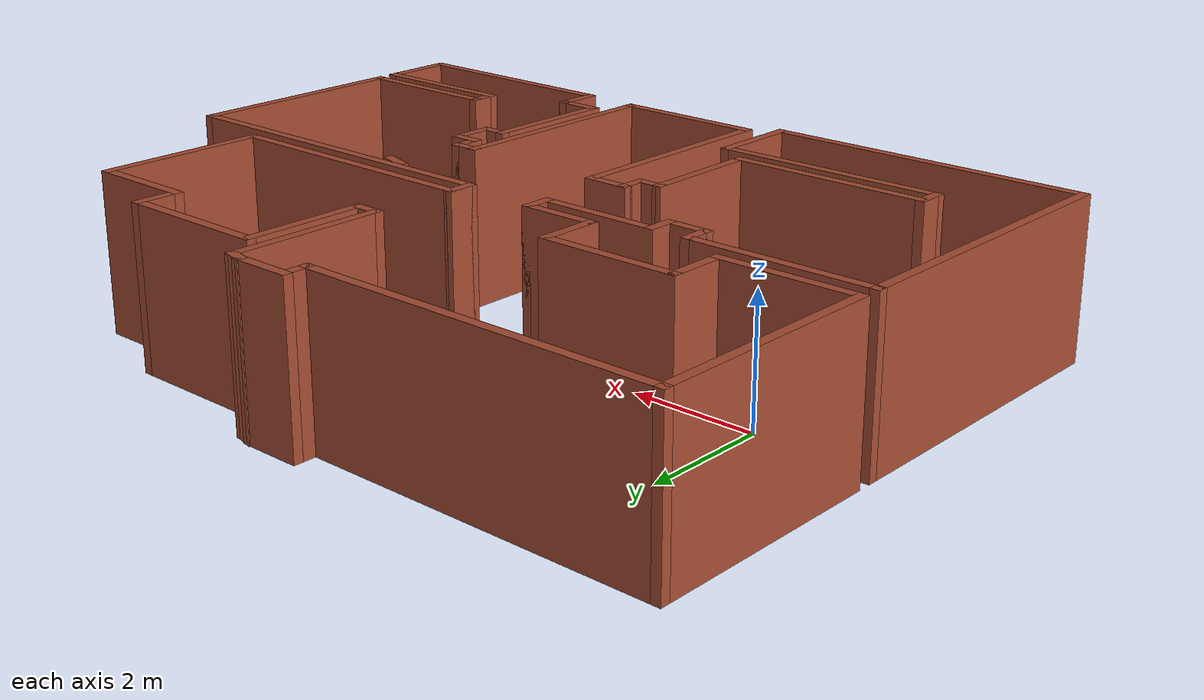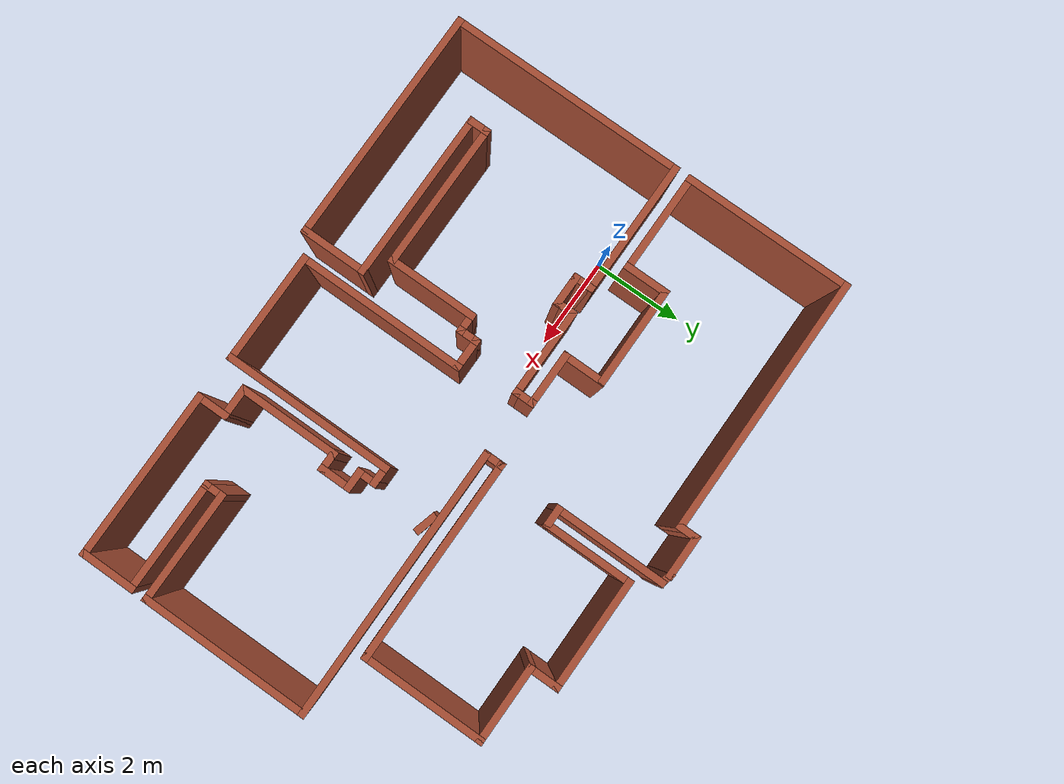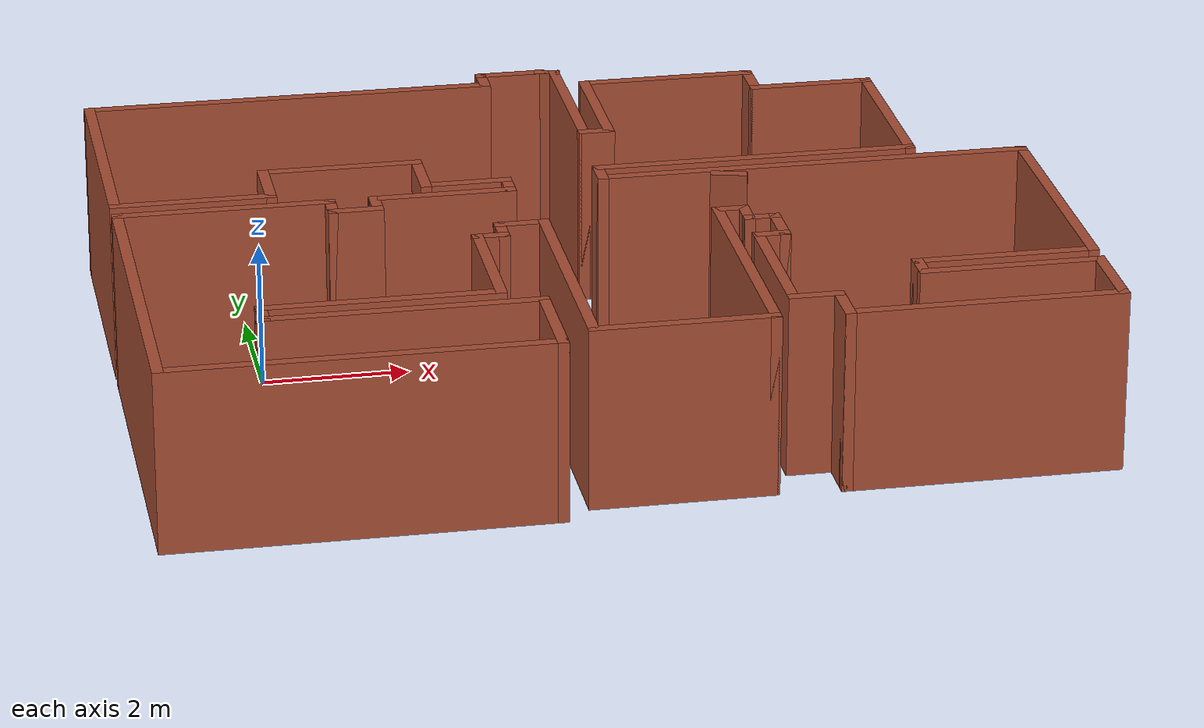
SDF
<?xml version='1.0'?>
<sdf version='1.6'>
  <model name='map_66'>
    <pose frame=''>4.36563 -0.210563 0 0 -0 0</pose>
    <link name='Wall_0'>
      <collision name='Wall_0_Collision'>
        <geometry>
          <box>
            <size>1 0.15 2.5</size>
          </box>
        </geometry>
        <pose frame=''>0 0 1.25 0 -0 0</pose>
      </collision>
      <visual name='Wall_0_Visual'>
        <pose frame=''>0 0 1.25 0 -0 0</pose>
        <geometry>
          <box>
            <size>1 0.15 2.5</size>
          </box>
        </geometry>
        <material>
          <script>
            <uri>file://media/materials/scripts/gazebo.material</uri>
            <name>Gazebo/Bricks</name>
          </script>
          <ambient>1 1 1 1</ambient>
        </material>
        <meta>
          <layer>0</layer>
        </meta>
      </visual>
      <pose frame=''>-0.2 4.69203 0 0 -0 3.14159</pose>
    </link>
    <link name='Wall_1'>
      <collision name='Wall_1_Collision'>
        <geometry>
          <box>
            <size>0.5 0.15 2.5</size>
          </box>
        </geometry>
        <pose frame=''>0 0 1.25 0 -0 0</pose>
      </collision>
      <visual name='Wall_1_Visual'>
        <pose frame=''>0 0 1.25 0 -0 0</pose>
        <geometry>
          <box>
            <size>0.5 0.15 2.5</size>
          </box>
        </geometry>
        <material>
          <script>
            <uri>file://media/materials/scripts/gazebo.material</uri>
            <name>Gazebo/Bricks</name>
          </script>
          <ambient>1 1 1 1</ambient>
        </material>
        <meta>
          <layer>0</layer>
        </meta>
      </visual>
      <pose frame=''>-0.625 4.51703 0 0 -0 -1.5708</pose>
    </link>
    <link name='Wall_12'>
      <collision name='Wall_12_Collision'>
        <geometry>
          <box>
            <size>2 0.15 2.5</size>
          </box>
        </geometry>
        <pose frame=''>0 0 1.25 0 -0 0</pose>
      </collision>
      <visual name='Wall_12_Visual'>
        <pose frame=''>0 0 1.25 0 -0 0</pose>
        <geometry>
          <box>
            <size>2 0.15 2.5</size>
          </box>
        </geometry>
        <material>
          <script>
            <uri>file://media/materials/scripts/gazebo.material</uri>
            <name>Gazebo/Bricks</name>
          </script>
          <ambient>1 1 1 1</ambient>
        </material>
        <meta>
          <layer>0</layer>
        </meta>
      </visual>
      <pose frame=''>-1.85 0.392025 0 0 -0 3.14159</pose>
    </link>
    <link name='Wall_13'>
      <collision name='Wall_13_Collision'>
        <geometry>
          <box>
            <size>0.5 0.15 2.5</size>
          </box>
        </geometry>
        <pose frame=''>0 0 1.25 0 -0 0</pose>
      </collision>
      <visual name='Wall_13_Visual'>
        <pose frame=''>0 0 1.25 0 -0 0</pose>
        <geometry>
          <box>
            <size>0.5 0.15 2.5</size>
          </box>
        </geometry>
        <material>
          <script>
            <uri>file://media/materials/scripts/gazebo.material</uri>
            <name>Gazebo/Bricks</name>
          </script>
          <ambient>1 1 1 1</ambient>
        </material>
        <meta>
          <layer>0</layer>
        </meta>
      </visual>
      <pose frame=''>-2.775 0.217025 0 0 -0 -1.5708</pose>
    </link>
    <link name='Wall_14'>
      <collision name='Wall_14_Collision'>
        <geometry>
          <box>
            <size>0.75 0.15 2.5</size>
          </box>
        </geometry>
        <pose frame=''>0 0 1.25 0 -0 0</pose>
      </collision>
      <visual name='Wall_14_Visual'>
        <pose frame=''>0 0 1.25 0 -0 0</pose>
        <geometry>
          <box>
            <size>0.75 0.15 2.5</size>
          </box>
        </geometry>
        <material>
          <script>
            <uri>file://media/materials/scripts/gazebo.material</uri>
            <name>Gazebo/Bricks</name>
          </script>
          <ambient>1 1 1 1</ambient>
        </material>
        <meta>
          <layer>0</layer>
        </meta>
      </visual>
      <pose frame=''>-3.075 0.042025 0 0 -0 3.14159</pose>
    </link>
    <link name='Wall_15'>
      <collision name='Wall_15_Collision'>
        <geometry>
          <box>
            <size>0.5 0.15 2.5</size>
          </box>
        </geometry>
        <pose frame=''>0 0 1.25 0 -0 0</pose>
      </collision>
      <visual name='Wall_15_Visual'>
        <pose frame=''>0 0 1.25 0 -0 0</pose>
        <geometry>
          <box>
            <size>0.5 0.15 2.5</size>
          </box>
        </geometry>
        <material>
          <script>
            <uri>file://media/materials/scripts/gazebo.material</uri>
            <name>Gazebo/Bricks</name>
          </script>
          <ambient>1 1 1 1</ambient>
        </material>
        <meta>
          <layer>0</layer>
        </meta>
      </visual>
      <pose frame=''>-3.375 0.217025 0 0 -0 1.5708</pose>
    </link>
    <link name='Wall_16'>
      <collision name='Wall_16_Collision'>
        <geometry>
          <box>
            <size>3 0.15 2.5</size>
          </box>
        </geometry>
        <pose frame=''>0 0 1.25 0 -0 0</pose>
      </collision>
      <visual name='Wall_16_Visual'>
        <pose frame=''>0 0 1.25 0 -0 0</pose>
        <geometry>
          <box>
            <size>3 0.15 2.5</size>
          </box>
        </geometry>
        <material>
          <script>
            <uri>file://media/materials/scripts/gazebo.material</uri>
            <name>Gazebo/Bricks</name>
          </script>
          <ambient>1 1 1 1</ambient>
        </material>
        <meta>
          <layer>0</layer>
        </meta>
      </visual>
      <pose frame=''>-4.8 0.392025 0 0 -0 3.14159</pose>
    </link>
    <link name='Wall_17'>
      <collision name='Wall_17_Collision'>
        <geometry>
          <box>
            <size>5.25 0.15 2.5</size>
          </box>
        </geometry>
        <pose frame=''>0 0 1.25 0 -0 0</pose>
      </collision>
      <visual name='Wall_17_Visual'>
        <pose frame=''>0 0 1.25 0 -0 0</pose>
        <geometry>
          <box>
            <size>5.25 0.15 2.5</size>
          </box>
        </geometry>
        <material>
          <script>
            <uri>file://media/materials/scripts/gazebo.material</uri>
            <name>Gazebo/Bricks</name>
          </script>
          <ambient>1 1 1 1</ambient>
        </material>
        <meta>
          <layer>0</layer>
        </meta>
      </visual>
      <pose frame=''>-6.225 -2.15797 0 0 -0 -1.5708</pose>
    </link>
    <link name='Wall_18'>
      <collision name='Wall_18_Collision'>
        <geometry>
          <box>
            <size>5.25 0.15 2.5</size>
          </box>
        </geometry>
        <pose frame=''>0 0 1.25 0 -0 0</pose>
      </collision>
      <visual name='Wall_18_Visual'>
        <pose frame=''>0 0 1.25 0 -0 0</pose>
        <geometry>
          <box>
            <size>5.25 0.15 2.5</size>
          </box>
        </geometry>
        <material>
          <script>
            <uri>file://media/materials/scripts/gazebo.material</uri>
            <name>Gazebo/Bricks</name>
          </script>
          <ambient>1 1 1 1</ambient>
        </material>
        <meta>
          <layer>0</layer>
        </meta>
      </visual>
      <pose frame=''>-3.675 -4.70798 0 0 -0 0</pose>
    </link>
    <link name='Wall_19'>
      <collision name='Wall_19_Collision'>
        <geometry>
          <box>
            <size>1.5 0.15 2.5</size>
          </box>
        </geometry>
        <pose frame=''>0 0 1.25 0 -0 0</pose>
      </collision>
      <visual name='Wall_19_Visual'>
        <pose frame=''>0 0 1.25 0 -0 0</pose>
        <geometry>
          <box>
            <size>1.5 0.15 2.5</size>
          </box>
        </geometry>
        <material>
          <script>
            <uri>file://media/materials/scripts/gazebo.material</uri>
            <name>Gazebo/Bricks</name>
          </script>
          <ambient>1 1 1 1</ambient>
        </material>
        <meta>
          <layer>0</layer>
        </meta>
      </visual>
      <pose frame=''>-1.125 -4.03298 0 0 -0 1.5708</pose>
    </link>
    <link name='Wall_2'>
      <collision name='Wall_2_Collision'>
        <geometry>
          <box>
            <size>5.75 0.15 2.5</size>
          </box>
        </geometry>
        <pose frame=''>0 0 1.25 0 -0 0</pose>
      </collision>
      <visual name='Wall_2_Visual'>
        <pose frame=''>0 0 1.25 0 -0 0</pose>
        <geometry>
          <box>
            <size>5.75 0.15 2.5</size>
          </box>
        </geometry>
        <material>
          <script>
            <uri>file://media/materials/scripts/gazebo.material</uri>
            <name>Gazebo/Bricks</name>
          </script>
          <ambient>1 1 1 1</ambient>
        </material>
        <meta>
          <layer>0</layer>
        </meta>
      </visual>
      <pose frame=''>-3.425 4.34202 0 0 -0 3.14159</pose>
    </link>
    <link name='Wall_20'>
      <collision name='Wall_20_Collision'>
        <geometry>
          <box>
            <size>3.75 0.15 2.5</size>
          </box>
        </geometry>
        <pose frame=''>0 0 1.25 0 -0 0</pose>
      </collision>
      <visual name='Wall_20_Visual'>
        <pose frame=''>0 0 1.25 0 -0 0</pose>
        <geometry>
          <box>
            <size>3.75 0.15 2.5</size>
          </box>
        </geometry>
        <material>
          <script>
            <uri>file://media/materials/scripts/gazebo.material</uri>
            <name>Gazebo/Bricks</name>
          </script>
          <ambient>1 1 1 1</ambient>
        </material>
        <meta>
          <layer>0</layer>
        </meta>
      </visual>
      <pose frame=''>-2.925 -3.35798 0 0 -0 3.14159</pose>
    </link>
    <link name='Wall_21'>
      <collision name='Wall_21_Collision'>
        <geometry>
          <box>
            <size>0.5 0.15 2.5</size>
          </box>
        </geometry>
        <pose frame=''>0 0 1.25 0 -0 0</pose>
      </collision>
      <visual name='Wall_21_Visual'>
        <pose frame=''>0 0 1.25 0 -0 0</pose>
        <geometry>
          <box>
            <size>0.5 0.15 2.5</size>
          </box>
        </geometry>
        <material>
          <script>
            <uri>file://media/materials/scripts/gazebo.material</uri>
            <name>Gazebo/Bricks</name>
          </script>
          <ambient>1 1 1 1</ambient>
        </material>
        <meta>
          <layer>0</layer>
        </meta>
      </visual>
      <pose frame=''>-4.725 -3.18297 0 0 -0 1.5708</pose>
    </link>
    <link name='Wall_22'>
      <collision name='Wall_22_Collision'>
        <geometry>
          <box>
            <size>3.25 0.15 2.5</size>
          </box>
        </geometry>
        <pose frame=''>0 0 1.25 0 -0 0</pose>
      </collision>
      <visual name='Wall_22_Visual'>
        <pose frame=''>0 0 1.25 0 -0 0</pose>
        <geometry>
          <box>
            <size>3.25 0.15 2.5</size>
          </box>
        </geometry>
        <material>
          <script>
            <uri>file://media/materials/scripts/gazebo.material</uri>
            <name>Gazebo/Bricks</name>
          </script>
          <ambient>1 1 1 1</ambient>
        </material>
        <meta>
          <layer>0</layer>
        </meta>
      </visual>
      <pose frame=''>-3.175 -3.00798 0 0 -0 0</pose>
    </link>
    <link name='Wall_28'>
      <collision name='Wall_28_Collision'>
        <geometry>
          <box>
            <size>2.5 0.15 2.5</size>
          </box>
        </geometry>
        <pose frame=''>0 0 1.25 0 -0 0</pose>
      </collision>
      <visual name='Wall_28_Visual'>
        <pose frame=''>0 0 1.25 0 -0 0</pose>
        <geometry>
          <box>
            <size>2.5 0.15 2.5</size>
          </box>
        </geometry>
        <material>
          <script>
            <uri>file://media/materials/scripts/gazebo.material</uri>
            <name>Gazebo/Bricks</name>
          </script>
          <ambient>1 1 1 1</ambient>
        </material>
        <meta>
          <layer>0</layer>
        </meta>
      </visual>
      <pose frame=''>0.5 -4.40798 0 0 -0 0</pose>
    </link>
    <link name='Wall_29'>
      <collision name='Wall_29_Collision'>
        <geometry>
          <box>
            <size>3.75 0.15 2.5</size>
          </box>
        </geometry>
        <pose frame=''>0 0 1.25 0 -0 0</pose>
      </collision>
      <visual name='Wall_29_Visual'>
        <pose frame=''>0 0 1.25 0 -0 0</pose>
        <geometry>
          <box>
            <size>3.75 0.15 2.5</size>
          </box>
        </geometry>
        <material>
          <script>
            <uri>file://media/materials/scripts/gazebo.material</uri>
            <name>Gazebo/Bricks</name>
          </script>
          <ambient>1 1 1 1</ambient>
        </material>
        <meta>
          <layer>0</layer>
        </meta>
      </visual>
      <pose frame=''>1.675 -2.60798 0 0 -0 1.5708</pose>
    </link>
    <link name='Wall_3'>
      <collision name='Wall_3_Collision'>
        <geometry>
          <box>
            <size>3.75 0.15 2.5</size>
          </box>
        </geometry>
        <pose frame=''>0 0 1.25 0 -0 0</pose>
      </collision>
      <visual name='Wall_3_Visual'>
        <pose frame=''>0 0 1.25 0 -0 0</pose>
        <geometry>
          <box>
            <size>3.75 0.15 2.5</size>
          </box>
        </geometry>
        <material>
          <script>
            <uri>file://media/materials/scripts/gazebo.material</uri>
            <name>Gazebo/Bricks</name>
          </script>
          <ambient>1 1 1 1</ambient>
        </material>
        <meta>
          <layer>0</layer>
        </meta>
      </visual>
      <pose frame=''>-6.225 2.54203 0 0 -0 -1.5708</pose>
    </link>
    <link name='Wall_30'>
      <collision name='Wall_30_Collision'>
        <geometry>
          <box>
            <size>0.5 0.15 2.5</size>
          </box>
        </geometry>
        <pose frame=''>0 0 1.25 0 -0 0</pose>
      </collision>
      <visual name='Wall_30_Visual'>
        <pose frame=''>0 0 1.25 0 -0 0</pose>
        <geometry>
          <box>
            <size>0.5 0.15 2.5</size>
          </box>
        </geometry>
        <material>
          <script>
            <uri>file://media/materials/scripts/gazebo.material</uri>
            <name>Gazebo/Bricks</name>
          </script>
          <ambient>1 1 1 1</ambient>
        </material>
        <meta>
          <layer>0</layer>
        </meta>
      </visual>
      <pose frame=''>1.85 -0.807975 0 0 -0 0</pose>
    </link>
    <link name='Wall_31'>
      <collision name='Wall_31_Collision'>
        <geometry>
          <box>
            <size>0.5 0.15 2.5</size>
          </box>
        </geometry>
        <pose frame=''>0 0 1.25 0 -0 0</pose>
      </collision>
      <visual name='Wall_31_Visual'>
        <pose frame=''>0 0 1.25 0 -0 0</pose>
        <geometry>
          <box>
            <size>0.5 0.15 2.5</size>
          </box>
        </geometry>
        <material>
          <script>
            <uri>file://media/materials/scripts/gazebo.material</uri>
            <name>Gazebo/Bricks</name>
          </script>
          <ambient>1 1 1 1</ambient>
        </material>
        <meta>
          <layer>0</layer>
        </meta>
      </visual>
      <pose frame=''>2.025 -0.982975 0 0 -0 -1.5708</pose>
    </link>
    <link name='Wall_32'>
      <collision name='Wall_32_Collision'>
        <geometry>
          <box>
            <size>0.5 0.15 2.5</size>
          </box>
        </geometry>
        <pose frame=''>0 0 1.25 0 -0 0</pose>
      </collision>
      <visual name='Wall_32_Visual'>
        <pose frame=''>0 0 1.25 0 -0 0</pose>
        <geometry>
          <box>
            <size>0.5 0.15 2.5</size>
          </box>
        </geometry>
        <material>
          <script>
            <uri>file://media/materials/scripts/gazebo.material</uri>
            <name>Gazebo/Bricks</name>
          </script>
          <ambient>1 1 1 1</ambient>
        </material>
        <meta>
          <layer>0</layer>
        </meta>
      </visual>
      <pose frame=''>2.2 -1.15797 0 0 -0 0</pose>
    </link>
    <link name='Wall_33'>
      <collision name='Wall_33_Collision'>
        <geometry>
          <box>
            <size>0.75 0.15 2.5</size>
          </box>
        </geometry>
        <pose frame=''>0 0 1.25 0 -0 0</pose>
      </collision>
      <visual name='Wall_33_Visual'>
        <pose frame=''>0 0 1.25 0 -0 0</pose>
        <geometry>
          <box>
            <size>0.75 0.15 2.5</size>
          </box>
        </geometry>
        <material>
          <script>
            <uri>file://media/materials/scripts/gazebo.material</uri>
            <name>Gazebo/Bricks</name>
          </script>
          <ambient>1 1 1 1</ambient>
        </material>
        <meta>
          <layer>0</layer>
        </meta>
      </visual>
      <pose frame=''>2.375 -1.45798 0 0 -0 -1.5708</pose>
    </link>
    <link name='Wall_34'>
      <collision name='Wall_34_Collision'>
        <geometry>
          <box>
            <size>0.5 0.15 2.5</size>
          </box>
        </geometry>
        <pose frame=''>0 0 1.25 0 -0 0</pose>
      </collision>
      <visual name='Wall_34_Visual'>
        <pose frame=''>0 0 1.25 0 -0 0</pose>
        <geometry>
          <box>
            <size>0.5 0.15 2.5</size>
          </box>
        </geometry>
        <material>
          <script>
            <uri>file://media/materials/scripts/gazebo.material</uri>
            <name>Gazebo/Bricks</name>
          </script>
          <ambient>1 1 1 1</ambient>
        </material>
        <meta>
          <layer>0</layer>
        </meta>
      </visual>
      <pose frame=''>2.2 -1.75798 0 0 -0 3.14159</pose>
    </link>
    <link name='Wall_35'>
      <collision name='Wall_35_Collision'>
        <geometry>
          <box>
            <size>2.25 0.15 2.5</size>
          </box>
        </geometry>
        <pose frame=''>0 0 1.25 0 -0 0</pose>
      </collision>
      <visual name='Wall_35_Visual'>
        <pose frame=''>0 0 1.25 0 -0 0</pose>
        <geometry>
          <box>
            <size>2.25 0.15 2.5</size>
          </box>
        </geometry>
        <material>
          <script>
            <uri>file://media/materials/scripts/gazebo.material</uri>
            <name>Gazebo/Bricks</name>
          </script>
          <ambient>1 1 1 1</ambient>
        </material>
        <meta>
          <layer>0</layer>
        </meta>
      </visual>
      <pose frame=''>2.025 -2.80797 0 0 -0 -1.5708</pose>
    </link>
    <link name='Wall_36'>
      <collision name='Wall_36_Collision'>
        <geometry>
          <box>
            <size>0.75 0.15 2.5</size>
          </box>
        </geometry>
        <pose frame=''>0 0 1.25 0 -0 0</pose>
      </collision>
      <visual name='Wall_36_Visual'>
        <pose frame=''>0 0 1.25 0 -0 0</pose>
        <geometry>
          <box>
            <size>0.75 0.15 2.5</size>
          </box>
        </geometry>
        <material>
          <script>
            <uri>file://media/materials/scripts/gazebo.material</uri>
            <name>Gazebo/Bricks</name>
          </script>
          <ambient>1 1 1 1</ambient>
        </material>
        <meta>
          <layer>0</layer>
        </meta>
      </visual>
      <pose frame=''>2.325 -3.85798 0 0 -0 0</pose>
    </link>
    <link name='Wall_37'>
      <collision name='Wall_37_Collision'>
        <geometry>
          <box>
            <size>0.75 0.15 2.5</size>
          </box>
        </geometry>
        <pose frame=''>0 0 1.25 0 -0 0</pose>
      </collision>
      <visual name='Wall_37_Visual'>
        <pose frame=''>0 0 1.25 0 -0 0</pose>
        <geometry>
          <box>
            <size>0.75 0.15 2.5</size>
          </box>
        </geometry>
        <material>
          <script>
            <uri>file://media/materials/scripts/gazebo.material</uri>
            <name>Gazebo/Bricks</name>
          </script>
          <ambient>1 1 1 1</ambient>
        </material>
        <meta>
          <layer>0</layer>
        </meta>
      </visual>
      <pose frame=''>2.625 -4.15798 0 0 -0 -1.5708</pose>
    </link>
    <link name='Wall_38'>
      <collision name='Wall_38_Collision'>
        <geometry>
          <box>
            <size>3.75 0.15 2.5</size>
          </box>
        </geometry>
        <pose frame=''>0 0 1.25 0 -0 0</pose>
      </collision>
      <visual name='Wall_38_Visual'>
        <pose frame=''>0 0 1.25 0 -0 0</pose>
        <geometry>
          <box>
            <size>3.75 0.15 2.5</size>
          </box>
        </geometry>
        <material>
          <script>
            <uri>file://media/materials/scripts/gazebo.material</uri>
            <name>Gazebo/Bricks</name>
          </script>
          <ambient>1 1 1 1</ambient>
        </material>
        <meta>
          <layer>0</layer>
        </meta>
      </visual>
      <pose frame=''>4.425 -4.45798 0 0 -0 0</pose>
    </link>
    <link name='Wall_39'>
      <collision name='Wall_39_Collision'>
        <geometry>
          <box>
            <size>1.25 0.15 2.5</size>
          </box>
        </geometry>
        <pose frame=''>0 0 1.25 0 -0 0</pose>
      </collision>
      <visual name='Wall_39_Visual'>
        <pose frame=''>0 0 1.25 0 -0 0</pose>
        <geometry>
          <box>
            <size>1.25 0.15 2.5</size>
          </box>
        </geometry>
        <material>
          <script>
            <uri>file://media/materials/scripts/gazebo.material</uri>
            <name>Gazebo/Bricks</name>
          </script>
          <ambient>1 1 1 1</ambient>
        </material>
        <meta>
          <layer>0</layer>
        </meta>
      </visual>
      <pose frame=''>6.225 -3.90797 0 0 -0 1.5708</pose>
    </link>
    <link name='Wall_4'>
      <collision name='Wall_4_Collision'>
        <geometry>
          <box>
            <size>2.25 0.15 2.5</size>
          </box>
        </geometry>
        <pose frame=''>0 0 1.25 0 -0 0</pose>
      </collision>
      <visual name='Wall_4_Visual'>
        <pose frame=''>0 0 1.25 0 -0 0</pose>
        <geometry>
          <box>
            <size>2.25 0.15 2.5</size>
          </box>
        </geometry>
        <material>
          <script>
            <uri>file://media/materials/scripts/gazebo.material</uri>
            <name>Gazebo/Bricks</name>
          </script>
          <ambient>1 1 1 1</ambient>
        </material>
        <meta>
          <layer>0</layer>
        </meta>
      </visual>
      <pose frame=''>-5.175 0.742025 0 0 -0 0</pose>
    </link>
    <link name='Wall_44'>
      <collision name='Wall_44_Collision'>
        <geometry>
          <box>
            <size>2 0.15 2.5</size>
          </box>
        </geometry>
        <pose frame=''>0 0 1.25 0 -0 0</pose>
      </collision>
      <visual name='Wall_44_Visual'>
        <pose frame=''>0 0 1.25 0 -0 0</pose>
        <geometry>
          <box>
            <size>2 0.15 2.5</size>
          </box>
        </geometry>
        <material>
          <script>
            <uri>file://media/materials/scripts/gazebo.material</uri>
            <name>Gazebo/Bricks</name>
          </script>
          <ambient>1 1 1 1</ambient>
        </material>
        <meta>
          <layer>0</layer>
        </meta>
      </visual>
      <pose frame=''>-1.625 -2.08297 0 0 -0 1.5708</pose>
    </link>
    <link name='Wall_45'>
      <collision name='Wall_45_Collision'>
        <geometry>
          <box>
            <size>0.5 0.15 2.5</size>
          </box>
        </geometry>
        <pose frame=''>0 0 1.25 0 -0 0</pose>
      </collision>
      <visual name='Wall_45_Visual'>
        <pose frame=''>0 0 1.25 0 -0 0</pose>
        <geometry>
          <box>
            <size>0.5 0.15 2.5</size>
          </box>
        </geometry>
        <material>
          <script>
            <uri>file://media/materials/scripts/gazebo.material</uri>
            <name>Gazebo/Bricks</name>
          </script>
          <ambient>1 1 1 1</ambient>
        </material>
        <meta>
          <layer>0</layer>
        </meta>
      </visual>
      <pose frame=''>-1.45 -1.15797 0 0 -0 0</pose>
    </link>
    <link name='Wall_46'>
      <collision name='Wall_46_Collision'>
        <geometry>
          <box>
            <size>0.5 0.15 2.5</size>
          </box>
        </geometry>
        <pose frame=''>0 0 1.25 0 -0 0</pose>
      </collision>
      <visual name='Wall_46_Visual'>
        <pose frame=''>0 0 1.25 0 -0 0</pose>
        <geometry>
          <box>
            <size>0.5 0.15 2.5</size>
          </box>
        </geometry>
        <material>
          <script>
            <uri>file://media/materials/scripts/gazebo.material</uri>
            <name>Gazebo/Bricks</name>
          </script>
          <ambient>1 1 1 1</ambient>
        </material>
        <meta>
          <layer>0</layer>
        </meta>
      </visual>
      <pose frame=''>-1.275 -0.982975 0 0 -0 1.5708</pose>
    </link>
    <link name='Wall_49'>
      <collision name='Wall_49_Collision'>
        <geometry>
          <box>
            <size>0.75 0.15 2.5</size>
          </box>
        </geometry>
        <pose frame=''>0 0 1.25 0 -0 0</pose>
      </collision>
      <visual name='Wall_49_Visual'>
        <pose frame=''>0 0 1.25 0 -0 0</pose>
        <geometry>
          <box>
            <size>0.75 0.15 2.5</size>
          </box>
        </geometry>
        <material>
          <script>
            <uri>file://media/materials/scripts/gazebo.material</uri>
            <name>Gazebo/Bricks</name>
          </script>
          <ambient>1 1 1 1</ambient>
        </material>
        <meta>
          <layer>0</layer>
        </meta>
      </visual>
      <pose frame=''>-0.975 -0.807975 0 0 -0 0</pose>
    </link>
    <link name='Wall_5'>
      <collision name='Wall_5_Collision'>
        <geometry>
          <box>
            <size>1 0.15 2.5</size>
          </box>
        </geometry>
        <pose frame=''>0 0 1.25 0 -0 0</pose>
      </collision>
      <visual name='Wall_5_Visual'>
        <pose frame=''>0 0 1.25 0 -0 0</pose>
        <geometry>
          <box>
            <size>1 0.15 2.5</size>
          </box>
        </geometry>
        <material>
          <script>
            <uri>file://media/materials/scripts/gazebo.material</uri>
            <name>Gazebo/Bricks</name>
          </script>
          <ambient>1 1 1 1</ambient>
        </material>
        <meta>
          <layer>0</layer>
        </meta>
      </visual>
      <pose frame=''>-4.125 1.16702 0 0 -0 1.5708</pose>
    </link>
    <link name='Wall_50'>
      <collision name='Wall_50_Collision'>
        <geometry>
          <box>
            <size>3.75 0.15 2.5</size>
          </box>
        </geometry>
        <pose frame=''>0 0 1.25 0 -0 0</pose>
      </collision>
      <visual name='Wall_50_Visual'>
        <pose frame=''>0 0 1.25 0 -0 0</pose>
        <geometry>
          <box>
            <size>3.75 0.15 2.5</size>
          </box>
        </geometry>
        <material>
          <script>
            <uri>file://media/materials/scripts/gazebo.material</uri>
            <name>Gazebo/Bricks</name>
          </script>
          <ambient>1 1 1 1</ambient>
        </material>
        <meta>
          <layer>0</layer>
        </meta>
      </visual>
      <pose frame=''>-0.675 -2.60798 0 0 -0 -1.5708</pose>
    </link>
    <link name='Wall_53'>
      <collision name='Wall_53_Collision'>
        <geometry>
          <box>
            <size>2.5 0.15 2.5</size>
          </box>
        </geometry>
        <pose frame=''>0 0 1.25 0 -0 0</pose>
      </collision>
      <visual name='Wall_53_Visual'>
        <pose frame=''>0 0 1.25 0 -0 0</pose>
        <geometry>
          <box>
            <size>2.5 0.15 2.5</size>
          </box>
        </geometry>
        <material>
          <script>
            <uri>file://media/materials/scripts/gazebo.material</uri>
            <name>Gazebo/Bricks</name>
          </script>
          <ambient>1 1 1 1</ambient>
        </material>
        <meta>
          <layer>0</layer>
        </meta>
      </visual>
      <pose frame=''>5.05 -3.35798 0 0 -0 3.14159</pose>
    </link>
    <link name='Wall_54'>
      <collision name='Wall_54_Collision'>
        <geometry>
          <box>
            <size>0.5 0.15 2.5</size>
          </box>
        </geometry>
        <pose frame=''>0 0 1.25 0 -0 0</pose>
      </collision>
      <visual name='Wall_54_Visual'>
        <pose frame=''>0 0 1.25 0 -0 0</pose>
        <geometry>
          <box>
            <size>0.5 0.15 2.5</size>
          </box>
        </geometry>
        <material>
          <script>
            <uri>file://media/materials/scripts/gazebo.material</uri>
            <name>Gazebo/Bricks</name>
          </script>
          <ambient>1 1 1 1</ambient>
        </material>
        <meta>
          <layer>0</layer>
        </meta>
      </visual>
      <pose frame=''>3.875 -3.18297 0 0 -0 1.5708</pose>
    </link>
    <link name='Wall_55'>
      <collision name='Wall_55_Collision'>
        <geometry>
          <box>
            <size>2.5 0.15 2.5</size>
          </box>
        </geometry>
        <pose frame=''>0 0 1.25 0 -0 0</pose>
      </collision>
      <visual name='Wall_55_Visual'>
        <pose frame=''>0 0 1.25 0 -0 0</pose>
        <geometry>
          <box>
            <size>2.5 0.15 2.5</size>
          </box>
        </geometry>
        <material>
          <script>
            <uri>file://media/materials/scripts/gazebo.material</uri>
            <name>Gazebo/Bricks</name>
          </script>
          <ambient>1 1 1 1</ambient>
        </material>
        <meta>
          <layer>0</layer>
        </meta>
      </visual>
      <pose frame=''>5.05 -3.00798 0 0 -0 0</pose>
    </link>
    <link name='Wall_58'>
      <collision name='Wall_58_Collision'>
        <geometry>
          <box>
            <size>3.75 0.15 2.5</size>
          </box>
        </geometry>
        <pose frame=''>0 0 1.25 0 -0 0</pose>
      </collision>
      <visual name='Wall_58_Visual'>
        <pose frame=''>0 0 1.25 0 -0 0</pose>
        <geometry>
          <box>
            <size>3.75 0.15 2.5</size>
          </box>
        </geometry>
        <material>
          <script>
            <uri>file://media/materials/scripts/gazebo.material</uri>
            <name>Gazebo/Bricks</name>
          </script>
          <ambient>1 1 1 1</ambient>
        </material>
        <meta>
          <layer>0</layer>
        </meta>
      </visual>
      <pose frame=''>6.225 -1.20798 0 0 -0 1.5708</pose>
    </link>
    <link name='Wall_59'>
      <collision name='Wall_59_Collision'>
        <geometry>
          <box>
            <size>6 0.15 2.5</size>
          </box>
        </geometry>
        <pose frame=''>0 0 1.25 0 -0 0</pose>
      </collision>
      <visual name='Wall_59_Visual'>
        <pose frame=''>0 0 1.25 0 -0 0</pose>
        <geometry>
          <box>
            <size>6 0.15 2.5</size>
          </box>
        </geometry>
        <material>
          <script>
            <uri>file://media/materials/scripts/gazebo.material</uri>
            <name>Gazebo/Bricks</name>
          </script>
          <ambient>1 1 1 1</ambient>
        </material>
        <meta>
          <layer>0</layer>
        </meta>
      </visual>
      <pose frame=''>3.3 0.592025 0 0 -0 3.14159</pose>
    </link>
    <link name='Wall_6'>
      <collision name='Wall_6_Collision'>
        <geometry>
          <box>
            <size>2.25 0.15 2.5</size>
          </box>
        </geometry>
        <pose frame=''>0 0 1.25 0 -0 0</pose>
      </collision>
      <visual name='Wall_6_Visual'>
        <pose frame=''>0 0 1.25 0 -0 0</pose>
        <geometry>
          <box>
            <size>2.25 0.15 2.5</size>
          </box>
        </geometry>
        <material>
          <script>
            <uri>file://media/materials/scripts/gazebo.material</uri>
            <name>Gazebo/Bricks</name>
          </script>
          <ambient>1 1 1 1</ambient>
        </material>
        <meta>
          <layer>0</layer>
        </meta>
      </visual>
      <pose frame=''>-3.075 1.59203 0 0 -0 0</pose>
    </link>
    <link name='Wall_60'>
      <collision name='Wall_60_Collision'>
        <geometry>
          <box>
            <size>0.5 0.15 2.5</size>
          </box>
        </geometry>
        <pose frame=''>0 0 1.25 0 -0 0</pose>
      </collision>
      <visual name='Wall_60_Visual'>
        <pose frame=''>0 0 1.25 0 -0 0</pose>
        <geometry>
          <box>
            <size>0.5 0.15 2.5</size>
          </box>
        </geometry>
        <material>
          <script>
            <uri>file://media/materials/scripts/gazebo.material</uri>
            <name>Gazebo/Bricks</name>
          </script>
          <ambient>1 1 1 1</ambient>
        </material>
        <meta>
          <layer>0</layer>
        </meta>
      </visual>
      <pose frame=''>0.375 0.767025 0 0 -0 1.5708</pose>
    </link>
    <link name='Wall_61'>
      <collision name='Wall_61_Collision'>
        <geometry>
          <box>
            <size>4.5 0.15 2.5</size>
          </box>
        </geometry>
        <pose frame=''>0 0 1.25 0 -0 0</pose>
      </collision>
      <visual name='Wall_61_Visual'>
        <pose frame=''>0 0 1.25 0 -0 0</pose>
        <geometry>
          <box>
            <size>4.5 0.15 2.5</size>
          </box>
        </geometry>
        <material>
          <script>
            <uri>file://media/materials/scripts/gazebo.material</uri>
            <name>Gazebo/Bricks</name>
          </script>
          <ambient>1 1 1 1</ambient>
        </material>
        <meta>
          <layer>0</layer>
        </meta>
      </visual>
      <pose frame=''>2.55 0.942025 0 0 -0 0</pose>
    </link>
    <link name='Wall_64'>
      <collision name='Wall_64_Collision'>
        <geometry>
          <box>
            <size>2.75 0.15 2.5</size>
          </box>
        </geometry>
        <pose frame=''>0 0 1.25 0 -0 0</pose>
      </collision>
      <visual name='Wall_64_Visual'>
        <pose frame=''>0 0 1.25 0 -0 0</pose>
        <geometry>
          <box>
            <size>2.75 0.15 2.5</size>
          </box>
        </geometry>
        <material>
          <script>
            <uri>file://media/materials/scripts/gazebo.material</uri>
            <name>Gazebo/Bricks</name>
          </script>
          <ambient>1 1 1 1</ambient>
        </material>
        <meta>
          <layer>0</layer>
        </meta>
      </visual>
      <pose frame=''>4.725 2.24202 0 0 -0 1.5708</pose>
    </link>
    <link name='Wall_65'>
      <collision name='Wall_65_Collision'>
        <geometry>
          <box>
            <size>1.75 0.15 2.5</size>
          </box>
        </geometry>
        <pose frame=''>0 0 1.25 0 -0 0</pose>
      </collision>
      <visual name='Wall_65_Visual'>
        <pose frame=''>0 0 1.25 0 -0 0</pose>
        <geometry>
          <box>
            <size>1.75 0.15 2.5</size>
          </box>
        </geometry>
        <material>
          <script>
            <uri>file://media/materials/scripts/gazebo.material</uri>
            <name>Gazebo/Bricks</name>
          </script>
          <ambient>1 1 1 1</ambient>
        </material>
        <meta>
          <layer>0</layer>
        </meta>
      </visual>
      <pose frame=''>3.925 3.54203 0 0 -0 3.14159</pose>
    </link>
    <link name='Wall_66'>
      <collision name='Wall_66_Collision'>
        <geometry>
          <box>
            <size>0.75 0.15 2.5</size>
          </box>
        </geometry>
        <pose frame=''>0 0 1.25 0 -0 0</pose>
      </collision>
      <visual name='Wall_66_Visual'>
        <pose frame=''>0 0 1.25 0 -0 0</pose>
        <geometry>
          <box>
            <size>0.75 0.15 2.5</size>
          </box>
        </geometry>
        <material>
          <script>
            <uri>file://media/materials/scripts/gazebo.material</uri>
            <name>Gazebo/Bricks</name>
          </script>
          <ambient>1 1 1 1</ambient>
        </material>
        <meta>
          <layer>0</layer>
        </meta>
      </visual>
      <pose frame=''>3.125 3.84203 0 0 -0 1.5708</pose>
    </link>
    <link name='Wall_67'>
      <collision name='Wall_67_Collision'>
        <geometry>
          <box>
            <size>2.5 0.15 2.5</size>
          </box>
        </geometry>
        <pose frame=''>0 0 1.25 0 -0 0</pose>
      </collision>
      <visual name='Wall_67_Visual'>
        <pose frame=''>0 0 1.25 0 -0 0</pose>
        <geometry>
          <box>
            <size>2.5 0.15 2.5</size>
          </box>
        </geometry>
        <material>
          <script>
            <uri>file://media/materials/scripts/gazebo.material</uri>
            <name>Gazebo/Bricks</name>
          </script>
          <ambient>1 1 1 1</ambient>
        </material>
        <meta>
          <layer>0</layer>
        </meta>
      </visual>
      <pose frame=''>1.95 4.14203 0 0 -0 3.14159</pose>
    </link>
    <link name='Wall_68'>
      <collision name='Wall_68_Collision'>
        <geometry>
          <box>
            <size>2 0.15 2.5</size>
          </box>
        </geometry>
        <pose frame=''>0 0 1.25 0 -0 0</pose>
      </collision>
      <visual name='Wall_68_Visual'>
        <pose frame=''>0 0 1.25 0 -0 0</pose>
        <geometry>
          <box>
            <size>2 0.15 2.5</size>
          </box>
        </geometry>
        <material>
          <script>
            <uri>file://media/materials/scripts/gazebo.material</uri>
            <name>Gazebo/Bricks</name>
          </script>
          <ambient>1 1 1 1</ambient>
        </material>
        <meta>
          <layer>0</layer>
        </meta>
      </visual>
      <pose frame=''>0.775 3.21703 0 0 -0 -1.5708</pose>
    </link>
    <link name='Wall_69'>
      <collision name='Wall_69_Collision'>
        <geometry>
          <box>
            <size>0.5 0.15 2.5</size>
          </box>
        </geometry>
        <pose frame=''>0 0 1.25 0 -0 0</pose>
      </collision>
      <visual name='Wall_69_Visual'>
        <pose frame=''>0 0 1.25 0 -0 0</pose>
        <geometry>
          <box>
            <size>0.5 0.15 2.5</size>
          </box>
        </geometry>
        <material>
          <script>
            <uri>file://media/materials/scripts/gazebo.material</uri>
            <name>Gazebo/Bricks</name>
          </script>
          <ambient>1 1 1 1</ambient>
        </material>
        <meta>
          <layer>0</layer>
        </meta>
      </visual>
      <pose frame=''>0.6 2.29203 0 0 -0 3.14159</pose>
    </link>
    <link name='Wall_7'>
      <collision name='Wall_7_Collision'>
        <geometry>
          <box>
            <size>1 0.15 2.5</size>
          </box>
        </geometry>
        <pose frame=''>0 0 1.25 0 -0 0</pose>
      </collision>
      <visual name='Wall_7_Visual'>
        <pose frame=''>0 0 1.25 0 -0 0</pose>
        <geometry>
          <box>
            <size>1 0.15 2.5</size>
          </box>
        </geometry>
        <material>
          <script>
            <uri>file://media/materials/scripts/gazebo.material</uri>
            <name>Gazebo/Bricks</name>
          </script>
          <ambient>1 1 1 1</ambient>
        </material>
        <meta>
          <layer>0</layer>
        </meta>
      </visual>
      <pose frame=''>-2.025 1.16702 0 0 -0 -1.5708</pose>
    </link>
    <link name='Wall_70'>
      <collision name='Wall_70_Collision'>
        <geometry>
          <box>
            <size>2.5 0.15 2.5</size>
          </box>
        </geometry>
        <pose frame=''>0 0 1.25 0 -0 0</pose>
      </collision>
      <visual name='Wall_70_Visual'>
        <pose frame=''>0 0 1.25 0 -0 0</pose>
        <geometry>
          <box>
            <size>2.5 0.15 2.5</size>
          </box>
        </geometry>
        <material>
          <script>
            <uri>file://media/materials/scripts/gazebo.material</uri>
            <name>Gazebo/Bricks</name>
          </script>
          <ambient>1 1 1 1</ambient>
        </material>
        <meta>
          <layer>0</layer>
        </meta>
      </visual>
      <pose frame=''>0.425 3.46703 0 0 -0 1.5708</pose>
    </link>
    <link name='Wall_71'>
      <collision name='Wall_71_Collision'>
        <geometry>
          <box>
            <size>0.356155 0.15 2.5</size>
          </box>
        </geometry>
        <pose frame=''>0 0 1.25 0 -0 0</pose>
      </collision>
      <visual name='Wall_71_Visual'>
        <pose frame=''>0 0 1.25 0 -0 0</pose>
        <geometry>
          <box>
            <size>0.356155 0.15 2.5</size>
          </box>
        </geometry>
        <material>
          <script>
            <uri>file://media/materials/scripts/gazebo.material</uri>
            <name>Gazebo/Bricks</name>
          </script>
          <ambient>1 1 1 1</ambient>
        </material>
        <meta>
          <layer>0</layer>
        </meta>
      </visual>
      <pose frame=''>0.325 4.66702 0 0 -0 2.89661</pose>
    </link>
    <link name='Wall_73'>
      <collision name='Wall_73_Collision'>
        <geometry>
          <box>
            <size>0.5 0.15 2.5</size>
          </box>
        </geometry>
        <pose frame=''>0 0 1.25 0 -0 0</pose>
      </collision>
      <visual name='Wall_73_Visual'>
        <pose frame=''>0 0 1.25 0 -0 0</pose>
        <geometry>
          <box>
            <size>0.5 0.15 2.5</size>
          </box>
        </geometry>
        <material>
          <script>
            <uri>file://media/materials/scripts/gazebo.material</uri>
            <name>Gazebo/Bricks</name>
          </script>
          <ambient>1 1 1 1</ambient>
        </material>
        <meta>
          <layer>0</layer>
        </meta>
      </visual>
      <pose frame=''>2.08394 0.420677 0 0 -0 -0.261799</pose>
    </link>
    <link name='Wall_8'>
      <collision name='Wall_8_Collision'>
        <geometry>
          <box>
            <size>1.25 0.15 2.5</size>
          </box>
        </geometry>
        <pose frame=''>0 0 1.25 0 -0 0</pose>
      </collision>
      <visual name='Wall_8_Visual'>
        <pose frame=''>0 0 1.25 0 -0 0</pose>
        <geometry>
          <box>
            <size>1.25 0.15 2.5</size>
          </box>
        </geometry>
        <material>
          <script>
            <uri>file://media/materials/scripts/gazebo.material</uri>
            <name>Gazebo/Bricks</name>
          </script>
          <ambient>1 1 1 1</ambient>
        </material>
        <meta>
          <layer>0</layer>
        </meta>
      </visual>
      <pose frame=''>-1.475 0.742025 0 0 -0 0</pose>
    </link>
    <link name='Wall_9'>
      <collision name='Wall_9_Collision'>
        <geometry>
          <box>
            <size>0.5 0.15 2.5</size>
          </box>
        </geometry>
        <pose frame=''>0 0 1.25 0 -0 0</pose>
      </collision>
      <visual name='Wall_9_Visual'>
        <pose frame=''>0 0 1.25 0 -0 0</pose>
        <geometry>
          <box>
            <size>0.5 0.15 2.5</size>
          </box>
        </geometry>
        <material>
          <script>
            <uri>file://media/materials/scripts/gazebo.material</uri>
            <name>Gazebo/Bricks</name>
          </script>
          <ambient>1 1 1 1</ambient>
        </material>
        <meta>
          <layer>0</layer>
        </meta>
      </visual>
      <pose frame=''>-0.925 0.567025 0 0 -0 -1.5708</pose>
    </link>
    <static>1</static>
  </model>
</sdf>
